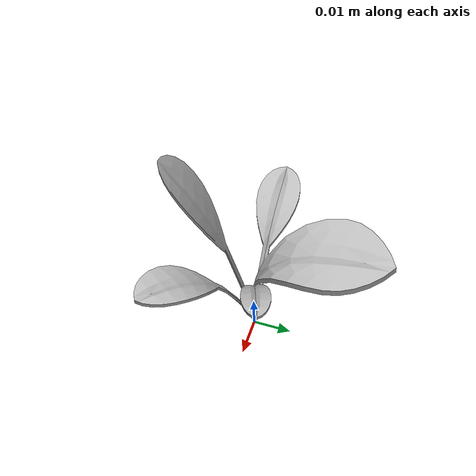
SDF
<sdf version="1.6">
  <model name="sugar_beet_42">
    <static>true</static>
    <link name="body">
      <visual name="visual">
        <geometry>
          <mesh>
            <uri>file:///sugar_beet_42/media/sugar_beet.dae</uri>
          </mesh>
        </geometry>
      </visual>
    </link>
  </model>
</sdf>
